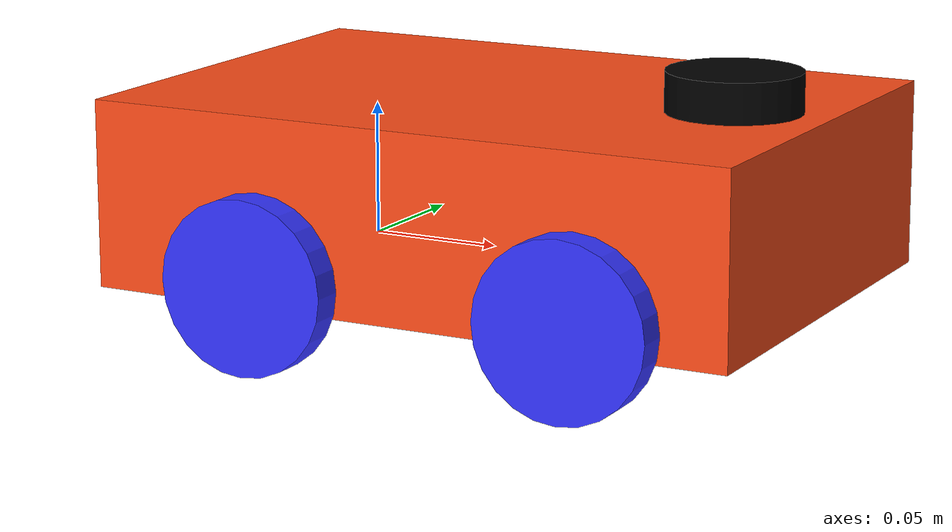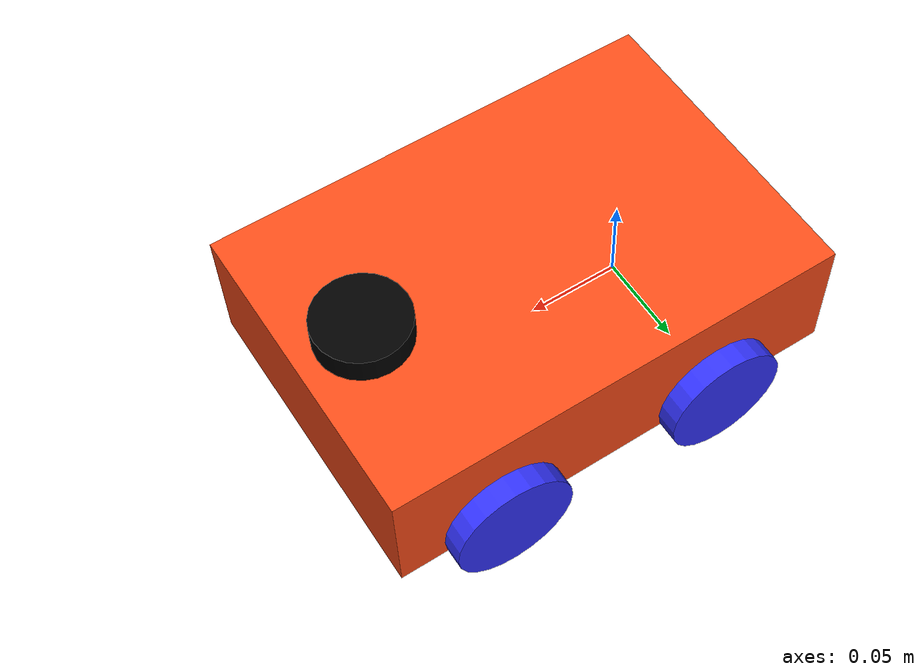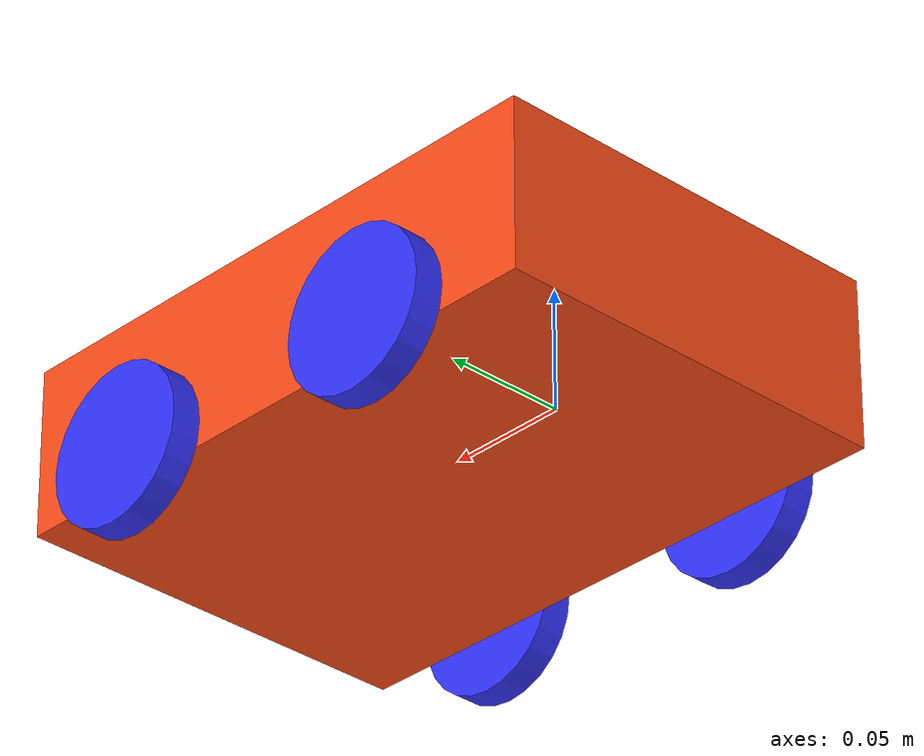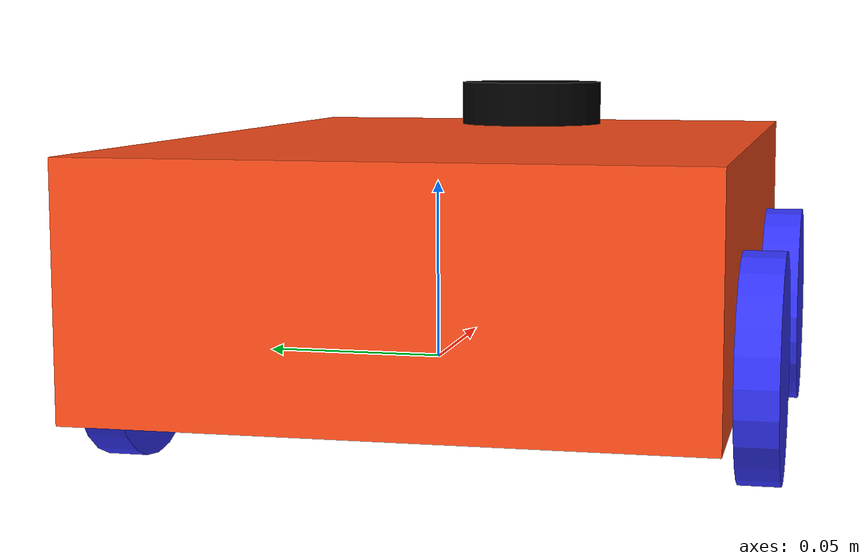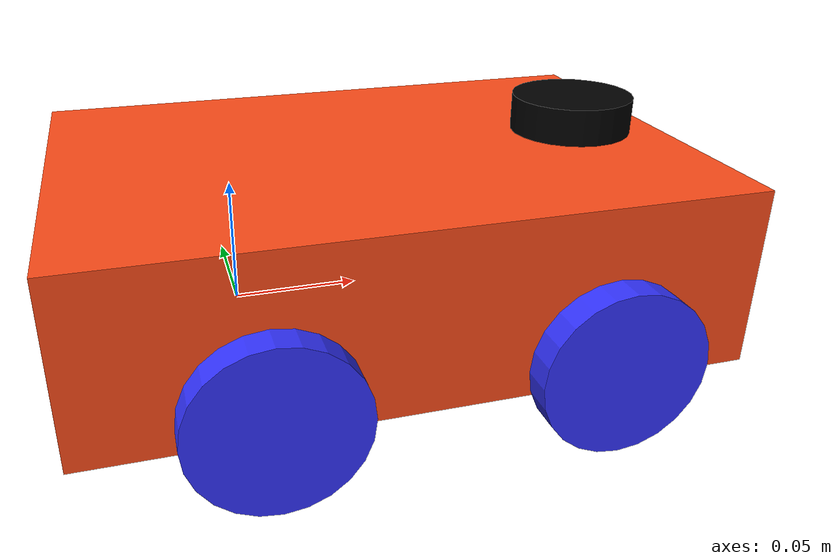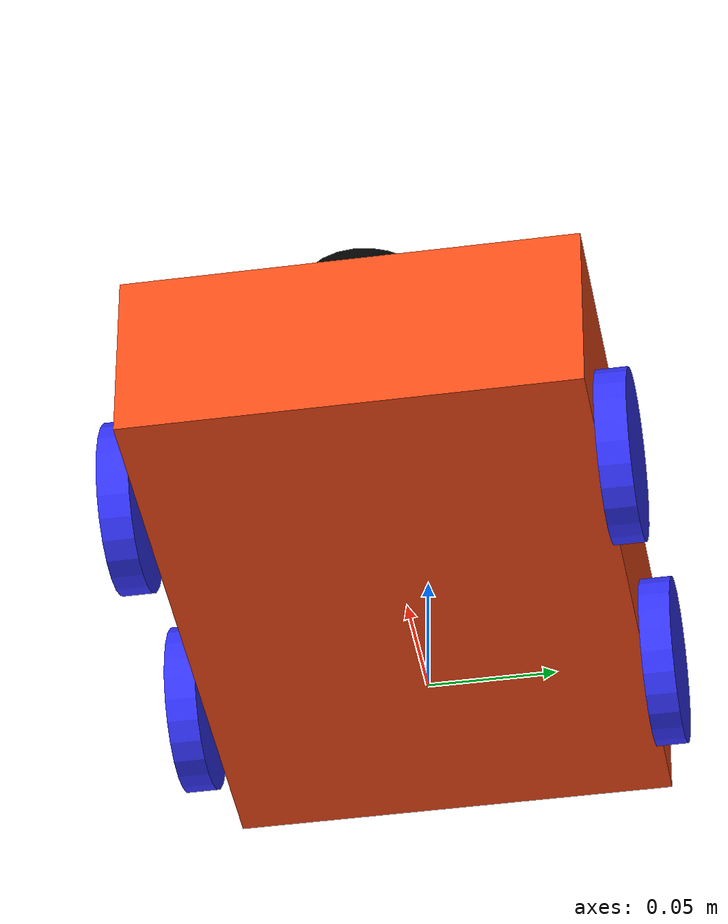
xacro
<?xml version="1.0"?>
<robot xmlns:xacro="http://www.ros.org/wiki/xacro"  name="robot">

    <xacro:arg name="use_ros2_control" default="true"/>
    <xacro:arg name="sim_mode" default="true"/>

    <xacro:include filename="robot_core1.xacro" />

    <xacro:if value="$(arg use_ros2_control)">
        <xacro:include filename="ros2_control1.xacro" />
    </xacro:if>
    <xacro:unless value="$(arg use_ros2_control)">
        <xacro:include filename="gazebo_control.xacro" />
    </xacro:unless>
    <xacro:include filename="lidar.xacro" />
</robot>

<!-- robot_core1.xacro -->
<robot xmlns:xacro="http://www.ros.org/wiki/xacro" >

    <xacro:include filename="inertial_macros.xacro"/>

    <xacro:property name="chassis_length" value="0.25"/>
    <xacro:property name="chassis_width" value="0.172"/>
    <xacro:property name="chassis_height" value="0.07"/>
    <xacro:property name="chassis_mass" value="1.7"/>
    <xacro:property name="wheel_radius" value="0.0325"/>
    <xacro:property name="wheel_thickness" value="0.012"/>
    <xacro:property name="wheel_mass" value="0.05"/>
    <xacro:property name="wheel_offset_x" value="0.068"/>
    <xacro:property name="wheel_offset_y" value="0.092"/>
    <xacro:property name="wheel_offset_z" value="0.01"/>
    <xacro:property name="caster_wheel_radius" value="0.01"/>
    <xacro:property name="caster_wheel_mass" value="0.01"/>
    <xacro:property name="caster_wheel_offset_x" value="0.2"/>
    <xacro:property name="caster_wheel_offset_z" value="${wheel_offset_z - wheel_radius + caster_wheel_radius}"/>

    <material name="white">
        <color rgba="1 1 1 1" />
    </material>

    <material name="orange">
        <color rgba="1 0.3 0.1 1"/>
    </material>

    <material name="blue">
        <color rgba="0.2 0.2 1 1"/>
    </material>

    <material name="black">
        <color rgba="0 0 0 1"/>
    </material>

    <material name="red">
        <color rgba="1 0 0 1"/>
    </material>

    <!-- BASE LINK -->

    <link name="base_link">

    </link>

    <!-- BASE_FOOTPRINT LINK -->

    <joint name="base_footprint_joint" type="fixed">
        <parent link="base_link"/>
        <child link="base_footprint"/>
        <origin xyz="0 0 0" rpy="0 0 0"/>
    </joint>

    <link name="base_footprint">
    </link>

    <!-- CHASSIS LINK -->

    <joint name="chassis_joint" type="fixed">
        <parent link="base_link"/>
        <child link="chassis"/>
        <origin xyz="${-wheel_offset_x} 0 ${-wheel_offset_z}"/>
    </joint>

    <link name="chassis">
        <visual>
            <origin xyz="${chassis_length/2} 0 ${chassis_height/2}"/>
            <geometry>
                <box size="${chassis_length} ${chassis_width} ${chassis_height}"/>
            </geometry>
            <material name="orange"/>
        </visual>
        <collision>
            <origin xyz="${chassis_length/2} 0 ${chassis_height/2}"/>
            <geometry>
                <box size="${chassis_length} ${chassis_width} ${chassis_height}"/>
            </geometry>
        </collision>
        <xacro:inertial_box mass="0.5" x="${chassis_length}" y="${chassis_width}" z="${chassis_height}">
            <origin xyz="${chassis_length/2} 0 ${chassis_height/2}" rpy="0 0 0"/>
        </xacro:inertial_box>
    </link>

    <gazebo reference="chassis">
        <material>Gazebo/Orange</material>
    </gazebo>

    <!-- LEFT WHEEL LINK -->

    <joint name="left_rear" type="continuous">
        <parent link="base_link"/>
        <child link="left_wheel_rear"/>
        <origin xyz="0 ${wheel_offset_y} 0" rpy="-${pi/2} 0 0" />
        <axis xyz="0 0 1"/>
    </joint>

    <link name="left_wheel_rear">
        <visual>
            <geometry>
                <cylinder radius="${wheel_radius}" length="${wheel_thickness}"/>
            </geometry>
            <material name="blue"/>
        </visual>
        <collision>
            <geometry>
                <sphere radius="${wheel_radius}"/>
            </geometry>
        </collision>
        <xacro:inertial_cylinder mass="${wheel_mass}" length="${wheel_thickness}" radius="${wheel_radius}">
            <origin xyz="0 0 0" rpy="0 0 0"/>
        </xacro:inertial_cylinder>
    </link>

    <gazebo reference="left_wheel_rear">
        <material>Gazebo/Blue</material>
    </gazebo>

    <joint name="left_front" type="continuous">
        <parent link="base_link"/>
        <child link="left_wheel_front"/>
        <origin xyz="0.125 ${wheel_offset_y} 0" rpy="-${pi/2} 0 0" />
        <axis xyz="0 0 1"/>
    </joint>

    <link name="left_wheel_front">
        <visual>
            <geometry>
                <cylinder radius="${wheel_radius}" length="${wheel_thickness}"/>
            </geometry>
            <material name="blue"/>
        </visual>
        <collision>
            <geometry>
                <sphere radius="${wheel_radius}"/>
            </geometry>
        </collision>
        <xacro:inertial_cylinder mass="${wheel_mass}" length="${wheel_thickness}" radius="${wheel_radius}">
            <origin xyz="0 0 0" rpy="0 0 0"/>
        </xacro:inertial_cylinder>
    </link>

    <gazebo reference="left_wheel_front">
        <material>Gazebo/Blue</material>
    </gazebo>

    <!-- RIGHT WHEEL LINK -->

    <joint name="right_rear" type="continuous">
        <parent link="base_link"/>
        <child link="right_wheel_rear"/>
        <origin xyz="0 ${-wheel_offset_y} 0" rpy="${pi/2} 0 0" />
        <axis xyz="0 0 -1"/>
    </joint>

    <link name="right_wheel_rear">
        <visual>
            <geometry>
                <cylinder radius="${wheel_radius}" length="${wheel_thickness}"/>
            </geometry>
            <material name="blue"/>
        </visual>
        <collision>
            <geometry>
                <sphere radius="${wheel_radius}"/>
            </geometry>
        </collision>
        <xacro:inertial_cylinder mass="${wheel_mass}" length="${wheel_thickness}" radius="${wheel_radius}">
            <origin xyz="0 0 0" rpy="0 0 0"/>
        </xacro:inertial_cylinder>
    </link>

    <gazebo reference="right_wheel_rear">
        <material>Gazebo/Blue</material>
    </gazebo>

    <joint name="right_front" type="continuous">
        <parent link="base_link"/>
        <child link="right_wheel_front"/>
        <origin xyz="0.125 ${-wheel_offset_y} 0" rpy="${pi/2} 0 0" />
        <axis xyz="0 0 -1"/>
    </joint>

    <link name="right_wheel_front">
        <visual>
            <geometry>
                <cylinder radius="${wheel_radius}" length="${wheel_thickness}"/>
            </geometry>
            <material name="blue"/>
        </visual>
        <collision>
            <geometry>
                <sphere radius="${wheel_radius}"/>
            </geometry>
        </collision>
        <xacro:inertial_cylinder mass="${wheel_mass}" length="${wheel_thickness}" radius="${wheel_radius}">
            <origin xyz="0 0 0" rpy="0 0 0"/>
        </xacro:inertial_cylinder>
    </link>

    <gazebo reference="right_wheel_front">
        <material>Gazebo/Blue</material>
    </gazebo>

    <!-- CASTER WHEEL LINK -->

</robot>

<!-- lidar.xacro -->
<robot xmlns:xacro="http://www.ros.org/wiki/xacro"  name="robot">

    <joint name="laser_joint" type="fixed">
        <parent link="chassis"/>
        <child link="laser_frame"/>
        <origin xyz="0.214 0 0.07" rpy="0 0 0"/>
    </joint>

    <link name="laser_frame">
        <visual>
            <geometry>
                <cylinder radius="0.025" length="0.03"/>
            </geometry>
            <material name="black"/>
        </visual>
        <collision>
            <geometry>
                <cylinder radius="0.025" length="0.03"/>
            </geometry>
        </collision>
        <xacro:inertial_cylinder mass="0.3" length="0.03" radius="0.025">
            <origin xyz="0 0 0" rpy="0 0 0"/>
        </xacro:inertial_cylinder>
    </link>

    <gazebo reference="laser_frame">
        <material>Gazebo/Black</material>
        <sensor name="laser" type="ray">
            <pose>0 0 0 0 0 0</pose>
            <visualize>false</visualize>
            <update_rate>10</update_rate>
            <ray>
                <scan>
                    <horizontal>
                        <samples>360</samples>
                        <resolution>1</resolution>
                        <min_angle>-3.14</min_angle>
                        <max_angle>3.14</max_angle>
                    </horizontal>
                </scan>
                <range>
                    <min>0.3</min>
                    <max>12</max>
                    <resolution>0.01</resolution>
                </range>
            </ray>
            <plugin name="laser_controller" filename="libgazebo_ros_ray_sensor.so">
                <ros>
                    <argument>~/out:=scan</argument>
                </ros>
                <output_type>sensor_msgs/LaserScan</output_type>
                <frame_name>laser_frame</frame_name>
            </plugin>
        </sensor>

    </gazebo>

</robot>
